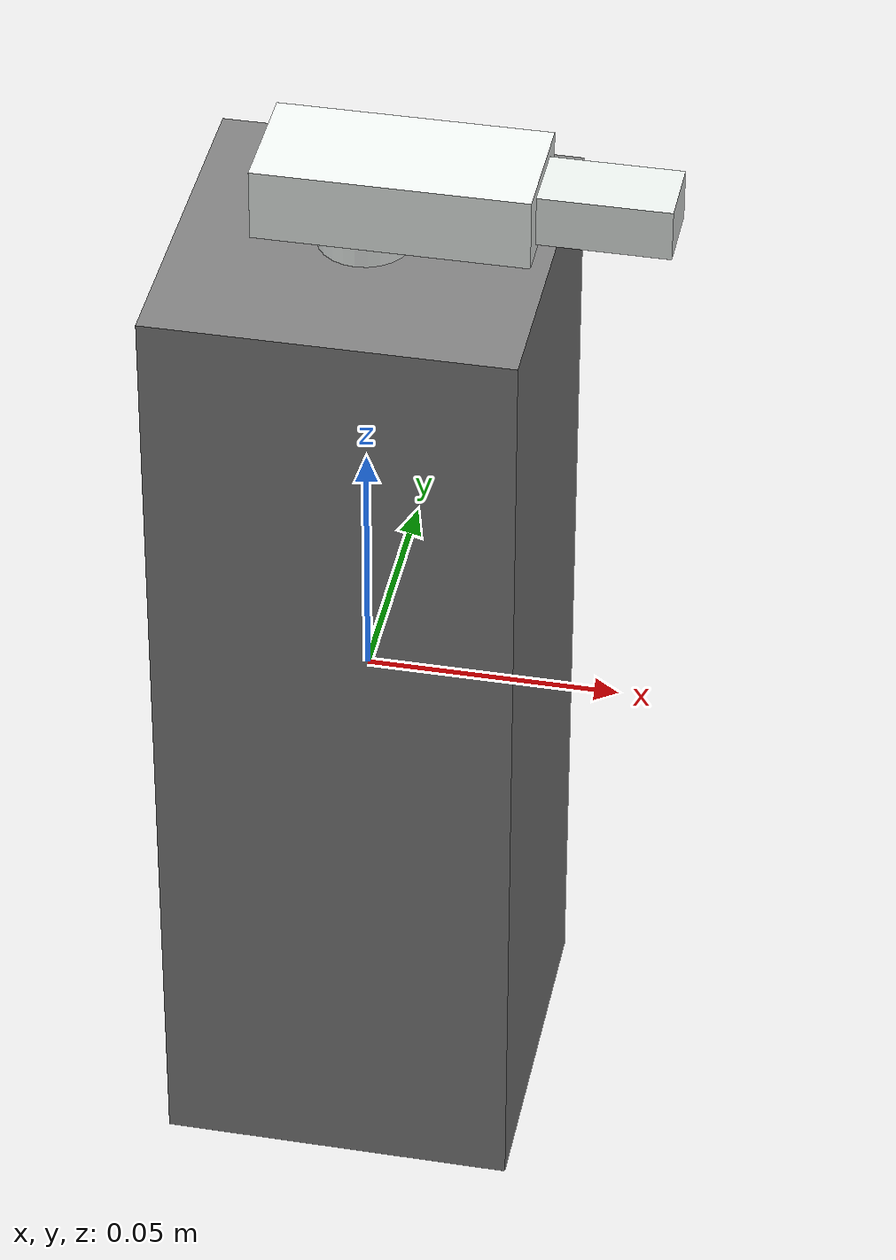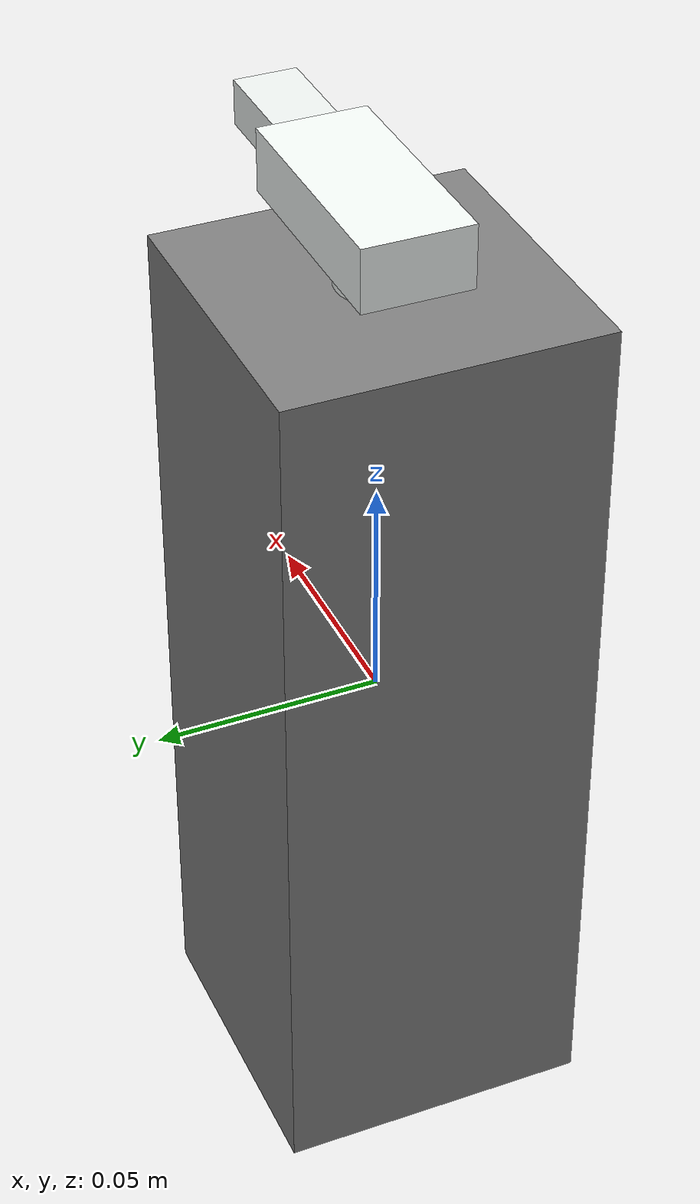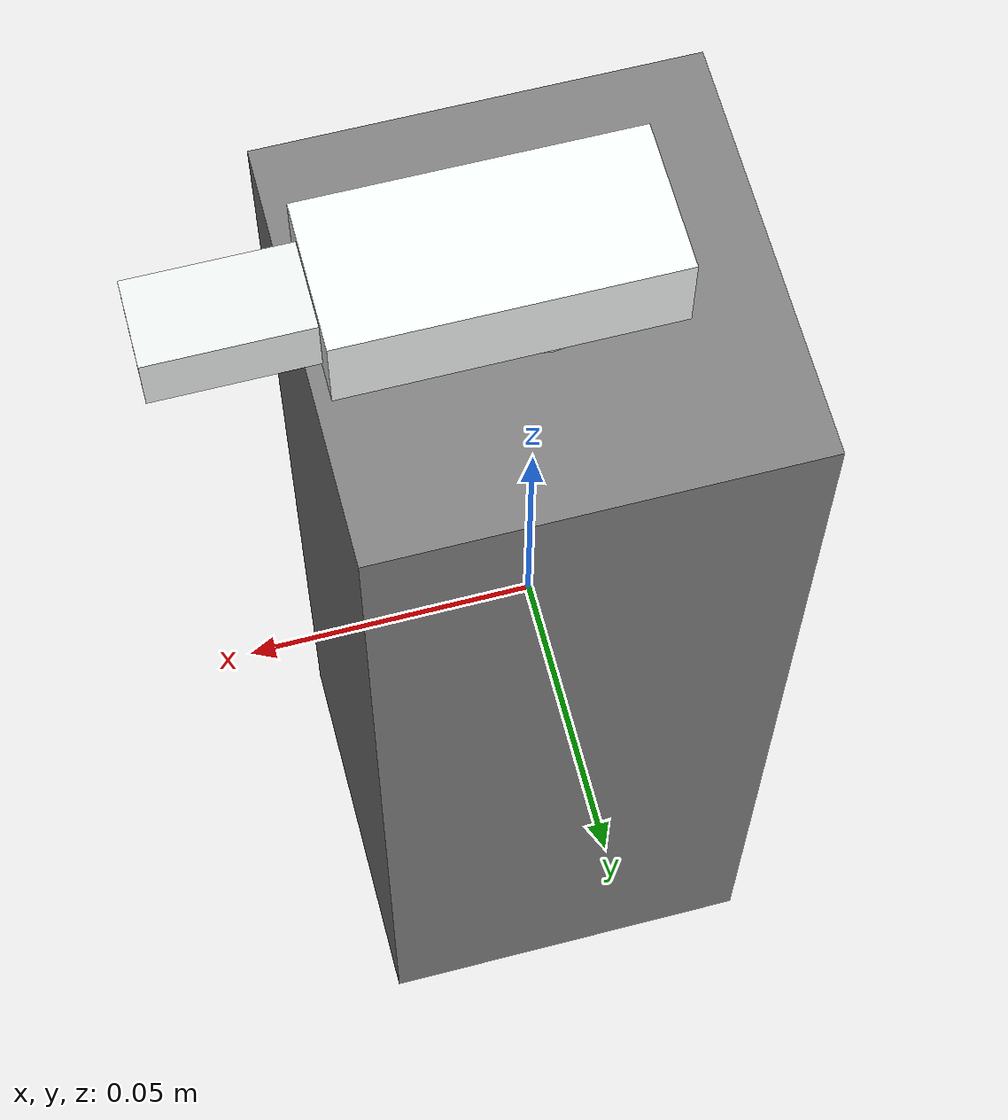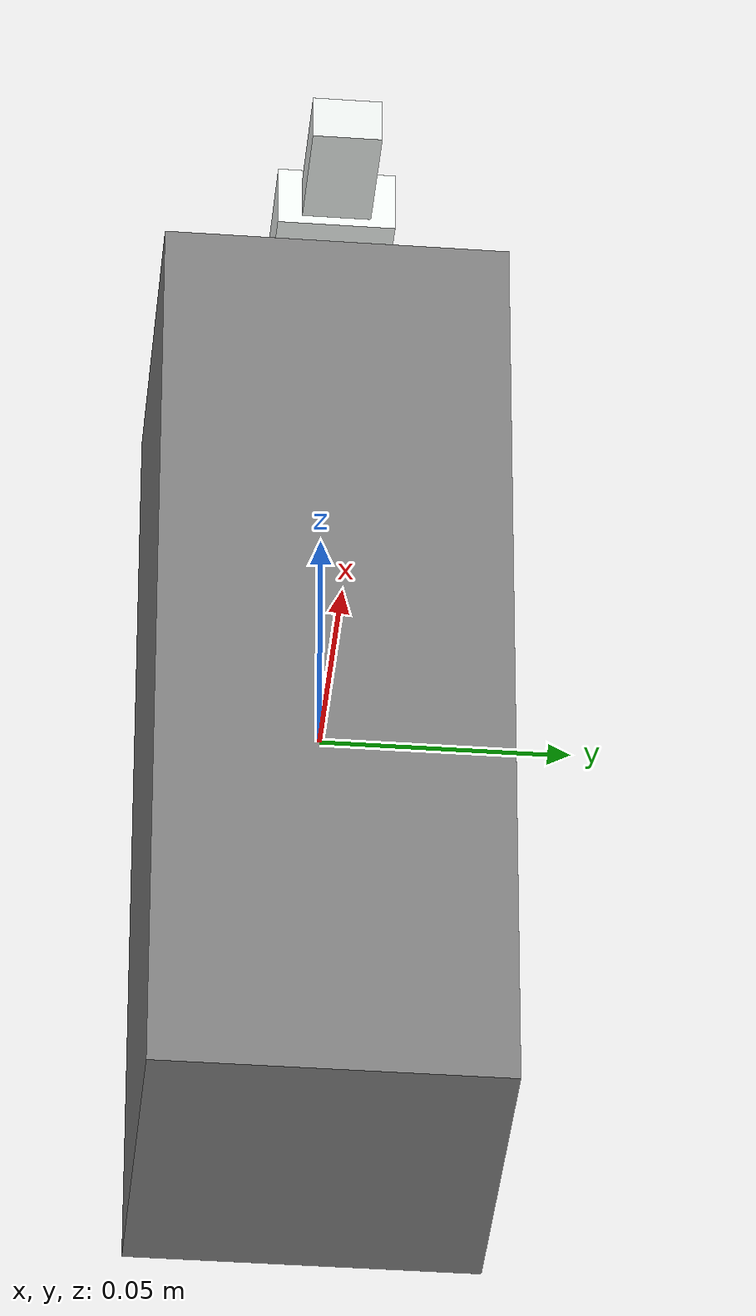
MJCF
<mujoco model="vla82_vla82_060">
  <compiler angle="radian"/>
  <asset>
    <texture name="source_texture" type="2d" file="source_texture.png"/>
    <material name="source_material" texture="source_texture" rgba="1 1 1 1"/>
  </asset>
  <default>
    <default class="visual"><geom contype="0" conaffinity="0" group="1" mass="0"/></default>
    <default class="collision"><geom contype="1" conaffinity="1" group="0" density="300" friction="0.55 0.005 0.0002" solref="0.02 1" solimp="0.9 0.95 0.001"/></default>
    <default class="region"><geom contype="0" conaffinity="0" group="1" rgba="0 1 0 0" mass="0"/></default>
  </default>
  <worldbody><body><body name="object">
    <geom name="soap_bottle" class="visual" type="cylinder" pos="0 0 -0.012" size="0.034 0.082" rgba="0.53 0.91 0.73 0.58"/>
    <geom name="liquid_layer" class="visual" type="cylinder" pos="0 0 -0.034" size="0.032 0.058" rgba="0.25 0.79 0.55 0.72"/>
    <geom name="soap_shoulder" class="visual" type="ellipsoid" pos="0 0 0.069" size="0.034 0.034 0.019" rgba="0.58 0.94 0.77 0.66"/>
    <geom name="pump_stem" class="visual" type="cylinder" pos="0 0 0.094" size="0.009 0.019" rgba="0.94 0.96 0.95 1"/>
    <geom name="pump_head" class="visual" type="box" pos="0.007 0 0.113" size="0.026 0.012 0.007" rgba="0.95 0.97 0.96 1"/>
    <geom name="pump_nozzle" class="visual" type="box" pos="0.040 0 0.113" size="0.018 0.007 0.005" rgba="0.92 0.94 0.93 1"/>
    <geom name="legacy_visual_mass_carrier" class="visual" type="box" size="0.035000 0.035000 0.100000" mass="0.980000000" rgba="0 0 0 0"/>
    <geom name="collision" class="collision" type="box" size="0.035000 0.035000 0.100000"/>
    <geom name="reg_bbox" class="region" type="box" pos="0 0 0" size="0.035000 0.035000 0.100000"/>
  </body></body></worldbody>
  <actuator/>
</mujoco>
